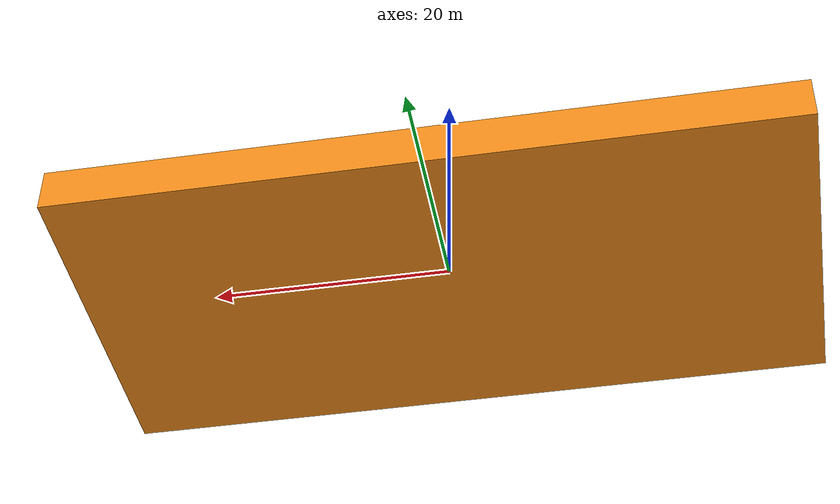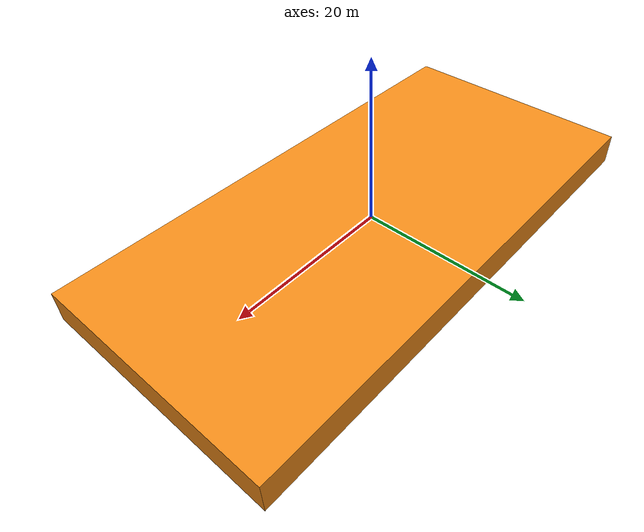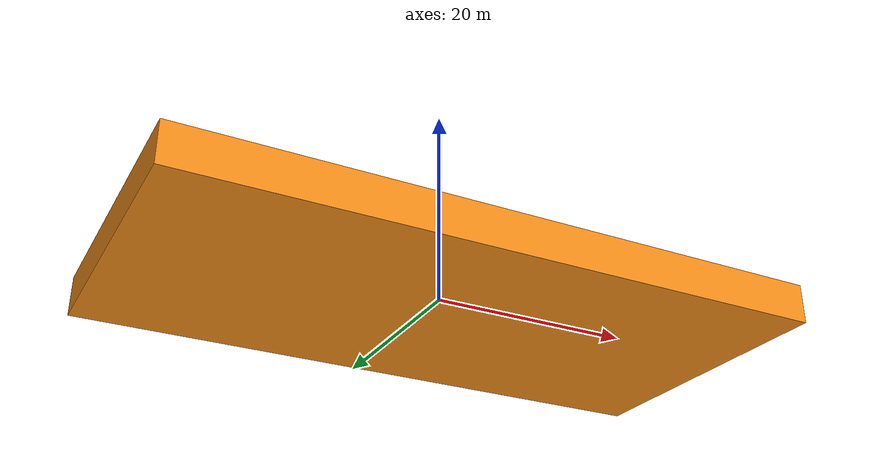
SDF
<?xml version='1.0'?>
<sdf version='1.7'>
  <model name='block4'>
    <link name='link_2'>
      <inertial>
        <mass>6982.38</mass>
        <inertia>
          <ixx>528573</ixx>
          <ixy>0</ixy>
          <ixz>0</ixz>
          <iyy>2.17899e+06</iyy>
          <iyz>0</iyz>
          <izz>2.69054e+06</izz>
        </inertia>
        <pose>0 0 0 0 -0 0</pose>
      </inertial>
      <pose>0 0 0 0 -0 0</pose>
      <gravity>1</gravity>
      <self_collide>0</self_collide>
      <kinematic>0</kinematic>
      <enable_wind>0</enable_wind>
      <visual name='visual'>
        <pose>0 0 0 0 -0 0</pose>
        <geometry>
          <box>
            <size>61.0754 29.8963 3.82403</size>
          </box>
        </geometry>
        <material>
          <lighting>1</lighting>
          <script>
            <uri>file://media/materials/scripts/gazebo.material</uri>
            <name>Gazebo/Orange</name>
          </script>
          <shader type='pixel'>
            <normal_map>__default__</normal_map>
          </shader>
          <ambient>1 0.509 0.047 1</ambient>
          <diffuse>1 0.509 0.047 1</diffuse>
          <specular>0.5 0.5 0.5 1</specular>
          <emissive>0 0 0 1</emissive>
        </material>
        <transparency>0</transparency>
        <cast_shadows>1</cast_shadows>
      </visual>
      <collision name='collision'>
        <laser_retro>0</laser_retro>
        <max_contacts>10</max_contacts>
        <pose>0 0 0 0 -0 0</pose>
        <geometry>
          <box>
            <size>61.0754 29.8963 3.82403</size>
          </box>
        </geometry>
        <surface>
          <friction>
            <ode>
              <mu>1</mu>
              <mu2>1</mu2>
              <fdir1>0 0 0</fdir1>
              <slip1>0</slip1>
              <slip2>0</slip2>
            </ode>
            <torsional>
              <coefficient>1</coefficient>
              <patch_radius>0</patch_radius>
              <surface_radius>0</surface_radius>
              <use_patch_radius>1</use_patch_radius>
              <ode>
                <slip>0</slip>
              </ode>
            </torsional>
          </friction>
          <bounce>
            <restitution_coefficient>0</restitution_coefficient>
            <threshold>1e+06</threshold>
          </bounce>
          <contact>
            <collide_without_contact>0</collide_without_contact>
            <collide_without_contact_bitmask>1</collide_without_contact_bitmask>
            <collide_bitmask>1</collide_bitmask>
            <ode>
              <soft_cfm>0</soft_cfm>
              <soft_erp>0.2</soft_erp>
              <kp>1e+13</kp>
              <kd>1</kd>
              <max_vel>0.01</max_vel>
              <min_depth>0</min_depth>
            </ode>
            <bullet>
              <split_impulse>1</split_impulse>
              <split_impulse_penetration_threshold>-0.01</split_impulse_penetration_threshold>
              <soft_cfm>0</soft_cfm>
              <soft_erp>0.2</soft_erp>
              <kp>1e+13</kp>
              <kd>1</kd>
            </bullet>
          </contact>
        </surface>
      </collision>
    </link>
    <static>0</static>
    <allow_auto_disable>1</allow_auto_disable>
  </model>
</sdf>
